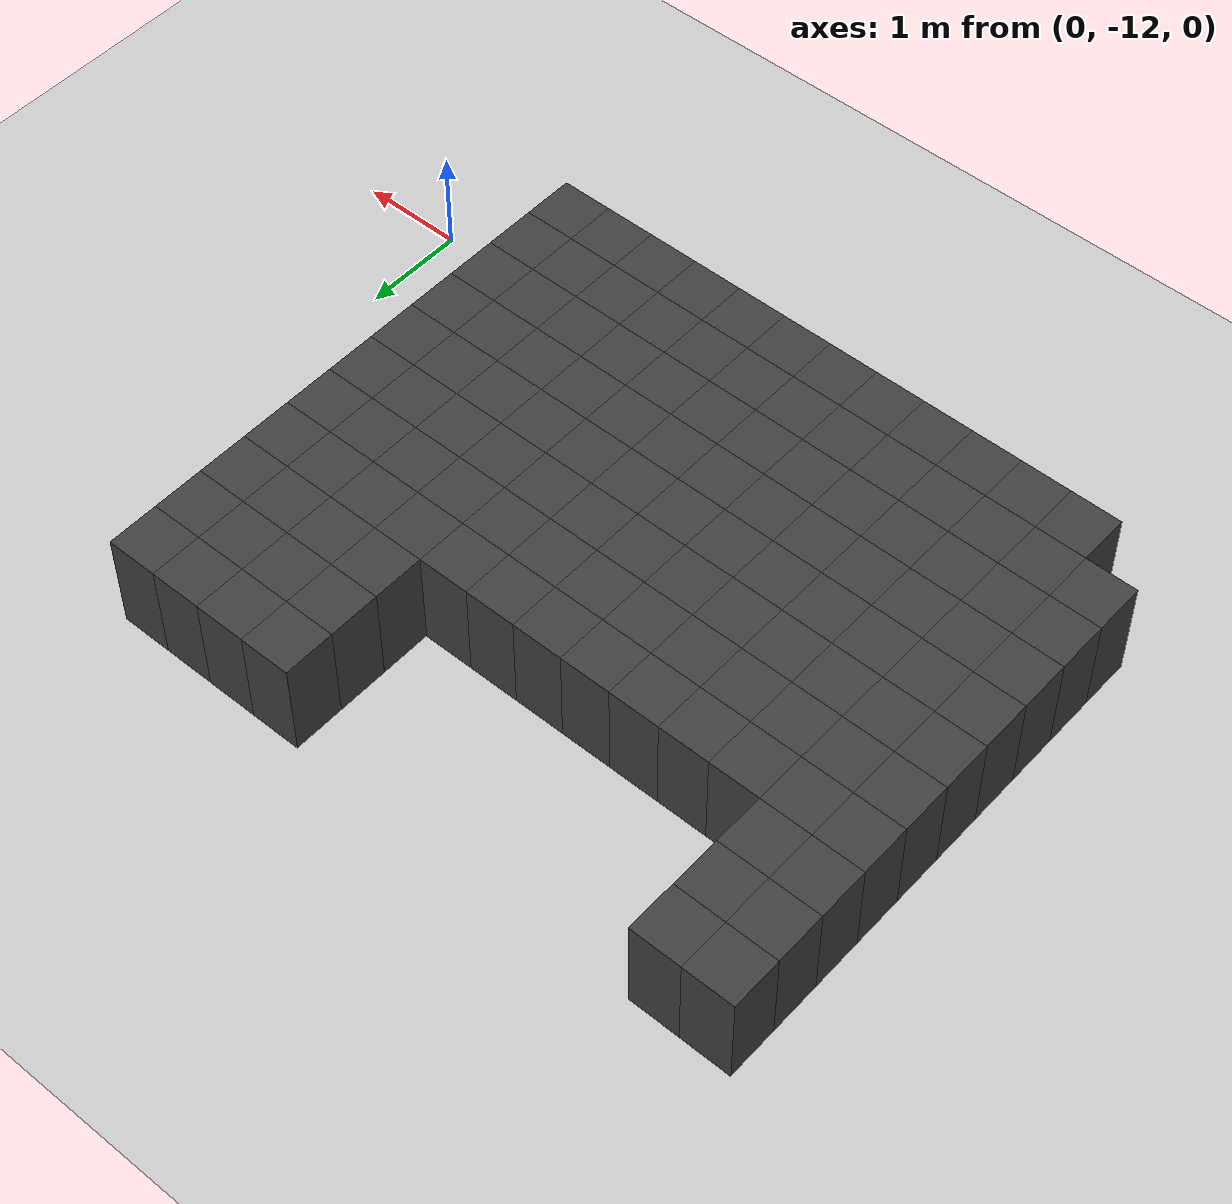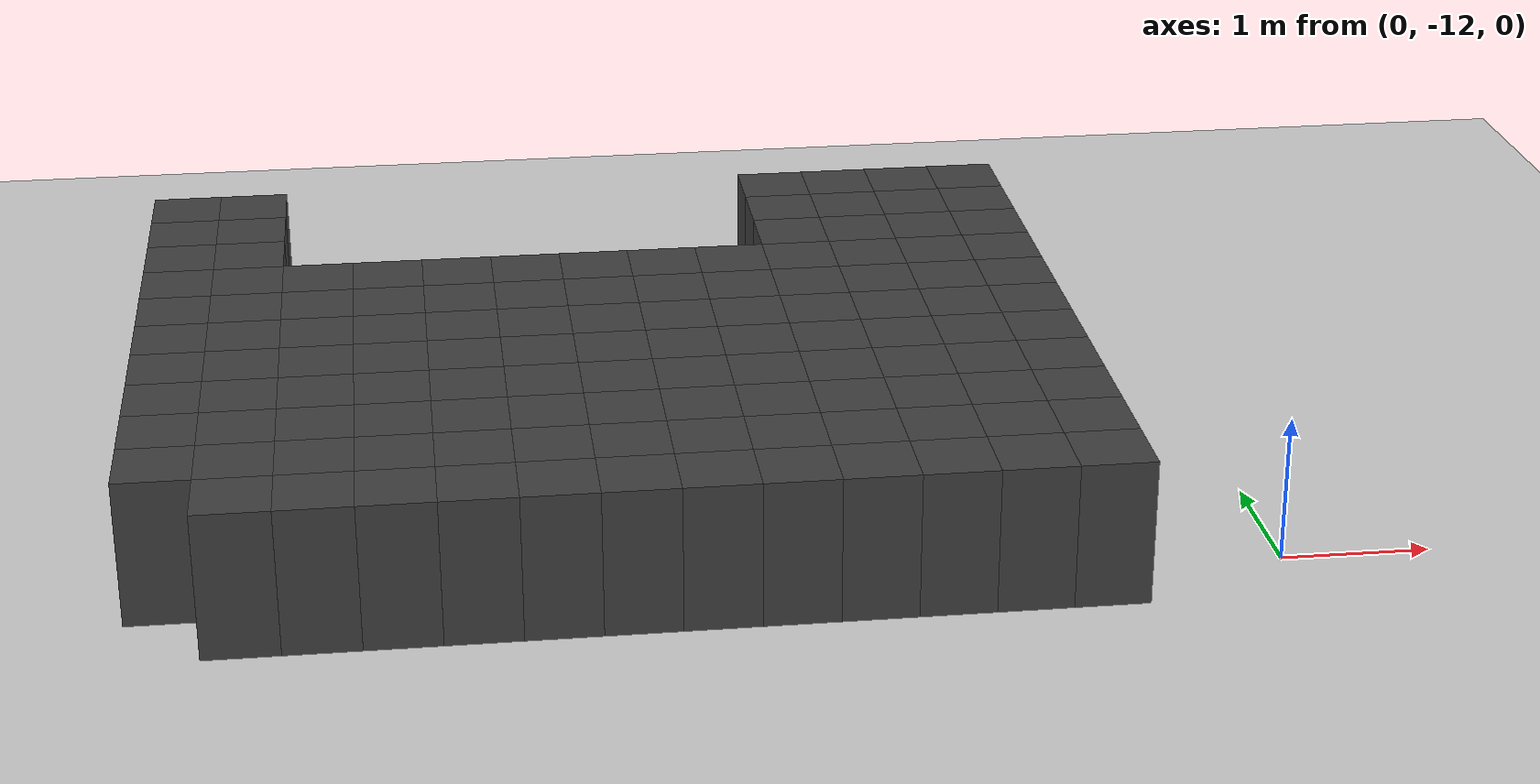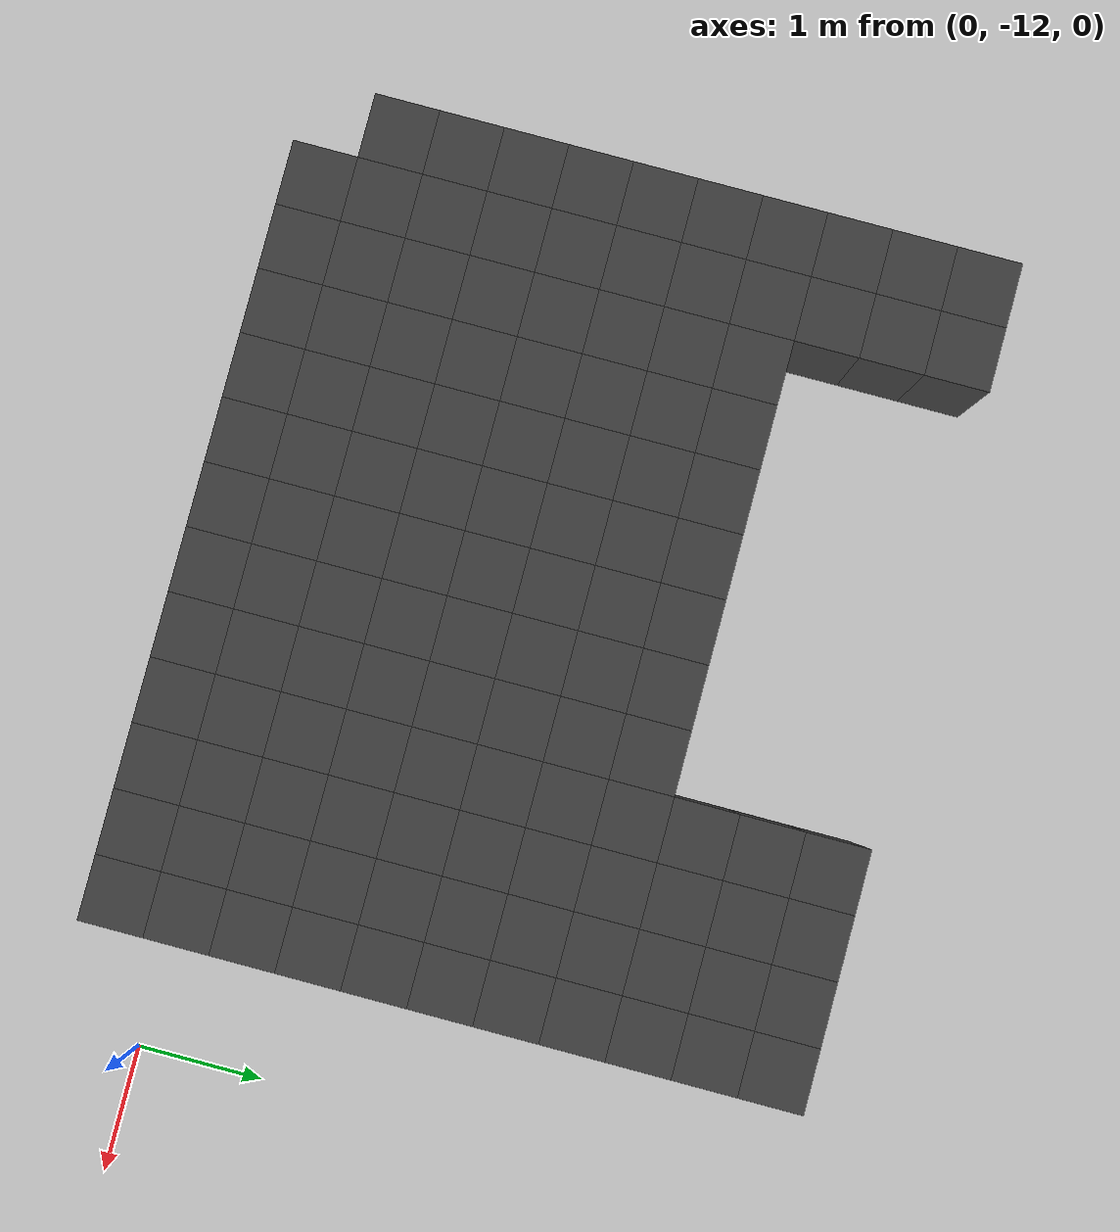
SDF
<sdf version="1.7">
 <world name="map_12885">
  <model name="ground_plane">
   <static>true</static>
   <link name="link">
    <collision name="collision">
     <geometry><plane><normal>0 0 1</normal><size>200 200</size></plane></geometry>
    </collision>
    <visual name="visual">
     <geometry><plane><normal>0 0 1</normal><size>200 200</size></plane></geometry>
     <material><ambient>0.8 0.8 0.8 1</ambient><diffuse>0.8 0.8 0.8 1</diffuse></material>
    </visual>
   </link>
  </model>
  <model name="maze_environment">
   <static>true</static>
   <link name="wall_1555">
    <pose>-7.250 -7.250 0.500 0 0 0</pose>
    <collision name="col"><geometry><box><size>0.5 0.5 1.0</size></box></geometry></collision>
    <visual name="vis">
     <geometry><box><size>0.5 0.5 1.0</size></box></geometry>
     <material><ambient>0.15 0.15 0.15 1</ambient><diffuse>0.25 0.25 0.25 1</diffuse></material>
    </visual>
   </link>
   <link name="wall_1556">
    <pose>-6.750 -7.250 0.500 0 0 0</pose>
    <collision name="col"><geometry><box><size>0.5 0.5 1.0</size></box></geometry></collision>
    <visual name="vis">
     <geometry><box><size>0.5 0.5 1.0</size></box></geometry>
     <material><ambient>0.15 0.15 0.15 1</ambient><diffuse>0.25 0.25 0.25 1</diffuse></material>
    </visual>
   </link>
   <link name="wall_1557">
    <pose>-2.750 -7.250 0.500 0 0 0</pose>
    <collision name="col"><geometry><box><size>0.5 0.5 1.0</size></box></geometry></collision>
    <visual name="vis">
     <geometry><box><size>0.5 0.5 1.0</size></box></geometry>
     <material><ambient>0.15 0.15 0.15 1</ambient><diffuse>0.25 0.25 0.25 1</diffuse></material>
    </visual>
   </link>
   <link name="wall_1558">
    <pose>-2.250 -7.250 0.500 0 0 0</pose>
    <collision name="col"><geometry><box><size>0.5 0.5 1.0</size></box></geometry></collision>
    <visual name="vis">
     <geometry><box><size>0.5 0.5 1.0</size></box></geometry>
     <material><ambient>0.15 0.15 0.15 1</ambient><diffuse>0.25 0.25 0.25 1</diffuse></material>
    </visual>
   </link>
   <link name="wall_1559">
    <pose>-1.750 -7.250 0.500 0 0 0</pose>
    <collision name="col"><geometry><box><size>0.5 0.5 1.0</size></box></geometry></collision>
    <visual name="vis">
     <geometry><box><size>0.5 0.5 1.0</size></box></geometry>
     <material><ambient>0.15 0.15 0.15 1</ambient><diffuse>0.25 0.25 0.25 1</diffuse></material>
    </visual>
   </link>
   <link name="wall_1560">
    <pose>-1.250 -7.250 0.500 0 0 0</pose>
    <collision name="col"><geometry><box><size>0.5 0.5 1.0</size></box></geometry></collision>
    <visual name="vis">
     <geometry><box><size>0.5 0.5 1.0</size></box></geometry>
     <material><ambient>0.15 0.15 0.15 1</ambient><diffuse>0.25 0.25 0.25 1</diffuse></material>
    </visual>
   </link>
   <link name="wall_1589">
    <pose>-7.250 -7.750 0.500 0 0 0</pose>
    <collision name="col"><geometry><box><size>0.5 0.5 1.0</size></box></geometry></collision>
    <visual name="vis">
     <geometry><box><size>0.5 0.5 1.0</size></box></geometry>
     <material><ambient>0.15 0.15 0.15 1</ambient><diffuse>0.25 0.25 0.25 1</diffuse></material>
    </visual>
   </link>
   <link name="wall_1590">
    <pose>-6.750 -7.750 0.500 0 0 0</pose>
    <collision name="col"><geometry><box><size>0.5 0.5 1.0</size></box></geometry></collision>
    <visual name="vis">
     <geometry><box><size>0.5 0.5 1.0</size></box></geometry>
     <material><ambient>0.15 0.15 0.15 1</ambient><diffuse>0.25 0.25 0.25 1</diffuse></material>
    </visual>
   </link>
   <link name="wall_1591">
    <pose>-2.750 -7.750 0.500 0 0 0</pose>
    <collision name="col"><geometry><box><size>0.5 0.5 1.0</size></box></geometry></collision>
    <visual name="vis">
     <geometry><box><size>0.5 0.5 1.0</size></box></geometry>
     <material><ambient>0.15 0.15 0.15 1</ambient><diffuse>0.25 0.25 0.25 1</diffuse></material>
    </visual>
   </link>
   <link name="wall_1592">
    <pose>-2.250 -7.750 0.500 0 0 0</pose>
    <collision name="col"><geometry><box><size>0.5 0.5 1.0</size></box></geometry></collision>
    <visual name="vis">
     <geometry><box><size>0.5 0.5 1.0</size></box></geometry>
     <material><ambient>0.15 0.15 0.15 1</ambient><diffuse>0.25 0.25 0.25 1</diffuse></material>
    </visual>
   </link>
   <link name="wall_1593">
    <pose>-1.750 -7.750 0.500 0 0 0</pose>
    <collision name="col"><geometry><box><size>0.5 0.5 1.0</size></box></geometry></collision>
    <visual name="vis">
     <geometry><box><size>0.5 0.5 1.0</size></box></geometry>
     <material><ambient>0.15 0.15 0.15 1</ambient><diffuse>0.25 0.25 0.25 1</diffuse></material>
    </visual>
   </link>
   <link name="wall_1594">
    <pose>-1.250 -7.750 0.500 0 0 0</pose>
    <collision name="col"><geometry><box><size>0.5 0.5 1.0</size></box></geometry></collision>
    <visual name="vis">
     <geometry><box><size>0.5 0.5 1.0</size></box></geometry>
     <material><ambient>0.15 0.15 0.15 1</ambient><diffuse>0.25 0.25 0.25 1</diffuse></material>
    </visual>
   </link>
   <link name="wall_1619">
    <pose>-7.250 -8.250 0.500 0 0 0</pose>
    <collision name="col"><geometry><box><size>0.5 0.5 1.0</size></box></geometry></collision>
    <visual name="vis">
     <geometry><box><size>0.5 0.5 1.0</size></box></geometry>
     <material><ambient>0.15 0.15 0.15 1</ambient><diffuse>0.25 0.25 0.25 1</diffuse></material>
    </visual>
   </link>
   <link name="wall_1620">
    <pose>-6.750 -8.250 0.500 0 0 0</pose>
    <collision name="col"><geometry><box><size>0.5 0.5 1.0</size></box></geometry></collision>
    <visual name="vis">
     <geometry><box><size>0.5 0.5 1.0</size></box></geometry>
     <material><ambient>0.15 0.15 0.15 1</ambient><diffuse>0.25 0.25 0.25 1</diffuse></material>
    </visual>
   </link>
   <link name="wall_1621">
    <pose>-2.750 -8.250 0.500 0 0 0</pose>
    <collision name="col"><geometry><box><size>0.5 0.5 1.0</size></box></geometry></collision>
    <visual name="vis">
     <geometry><box><size>0.5 0.5 1.0</size></box></geometry>
     <material><ambient>0.15 0.15 0.15 1</ambient><diffuse>0.25 0.25 0.25 1</diffuse></material>
    </visual>
   </link>
   <link name="wall_1622">
    <pose>-2.250 -8.250 0.500 0 0 0</pose>
    <collision name="col"><geometry><box><size>0.5 0.5 1.0</size></box></geometry></collision>
    <visual name="vis">
     <geometry><box><size>0.5 0.5 1.0</size></box></geometry>
     <material><ambient>0.15 0.15 0.15 1</ambient><diffuse>0.25 0.25 0.25 1</diffuse></material>
    </visual>
   </link>
   <link name="wall_1623">
    <pose>-1.750 -8.250 0.500 0 0 0</pose>
    <collision name="col"><geometry><box><size>0.5 0.5 1.0</size></box></geometry></collision>
    <visual name="vis">
     <geometry><box><size>0.5 0.5 1.0</size></box></geometry>
     <material><ambient>0.15 0.15 0.15 1</ambient><diffuse>0.25 0.25 0.25 1</diffuse></material>
    </visual>
   </link>
   <link name="wall_1624">
    <pose>-1.250 -8.250 0.500 0 0 0</pose>
    <collision name="col"><geometry><box><size>0.5 0.5 1.0</size></box></geometry></collision>
    <visual name="vis">
     <geometry><box><size>0.5 0.5 1.0</size></box></geometry>
     <material><ambient>0.15 0.15 0.15 1</ambient><diffuse>0.25 0.25 0.25 1</diffuse></material>
    </visual>
   </link>
   <link name="wall_1640">
    <pose>-7.250 -8.750 0.500 0 0 0</pose>
    <collision name="col"><geometry><box><size>0.5 0.5 1.0</size></box></geometry></collision>
    <visual name="vis">
     <geometry><box><size>0.5 0.5 1.0</size></box></geometry>
     <material><ambient>0.15 0.15 0.15 1</ambient><diffuse>0.25 0.25 0.25 1</diffuse></material>
    </visual>
   </link>
   <link name="wall_1641">
    <pose>-6.750 -8.750 0.500 0 0 0</pose>
    <collision name="col"><geometry><box><size>0.5 0.5 1.0</size></box></geometry></collision>
    <visual name="vis">
     <geometry><box><size>0.5 0.5 1.0</size></box></geometry>
     <material><ambient>0.15 0.15 0.15 1</ambient><diffuse>0.25 0.25 0.25 1</diffuse></material>
    </visual>
   </link>
   <link name="wall_1642">
    <pose>-6.250 -8.750 0.500 0 0 0</pose>
    <collision name="col"><geometry><box><size>0.5 0.5 1.0</size></box></geometry></collision>
    <visual name="vis">
     <geometry><box><size>0.5 0.5 1.0</size></box></geometry>
     <material><ambient>0.15 0.15 0.15 1</ambient><diffuse>0.25 0.25 0.25 1</diffuse></material>
    </visual>
   </link>
   <link name="wall_1643">
    <pose>-5.750 -8.750 0.500 0 0 0</pose>
    <collision name="col"><geometry><box><size>0.5 0.5 1.0</size></box></geometry></collision>
    <visual name="vis">
     <geometry><box><size>0.5 0.5 1.0</size></box></geometry>
     <material><ambient>0.15 0.15 0.15 1</ambient><diffuse>0.25 0.25 0.25 1</diffuse></material>
    </visual>
   </link>
   <link name="wall_1644">
    <pose>-5.250 -8.750 0.500 0 0 0</pose>
    <collision name="col"><geometry><box><size>0.5 0.5 1.0</size></box></geometry></collision>
    <visual name="vis">
     <geometry><box><size>0.5 0.5 1.0</size></box></geometry>
     <material><ambient>0.15 0.15 0.15 1</ambient><diffuse>0.25 0.25 0.25 1</diffuse></material>
    </visual>
   </link>
   <link name="wall_1645">
    <pose>-4.750 -8.750 0.500 0 0 0</pose>
    <collision name="col"><geometry><box><size>0.5 0.5 1.0</size></box></geometry></collision>
    <visual name="vis">
     <geometry><box><size>0.5 0.5 1.0</size></box></geometry>
     <material><ambient>0.15 0.15 0.15 1</ambient><diffuse>0.25 0.25 0.25 1</diffuse></material>
    </visual>
   </link>
   <link name="wall_1646">
    <pose>-4.250 -8.750 0.500 0 0 0</pose>
    <collision name="col"><geometry><box><size>0.5 0.5 1.0</size></box></geometry></collision>
    <visual name="vis">
     <geometry><box><size>0.5 0.5 1.0</size></box></geometry>
     <material><ambient>0.15 0.15 0.15 1</ambient><diffuse>0.25 0.25 0.25 1</diffuse></material>
    </visual>
   </link>
   <link name="wall_1647">
    <pose>-3.750 -8.750 0.500 0 0 0</pose>
    <collision name="col"><geometry><box><size>0.5 0.5 1.0</size></box></geometry></collision>
    <visual name="vis">
     <geometry><box><size>0.5 0.5 1.0</size></box></geometry>
     <material><ambient>0.15 0.15 0.15 1</ambient><diffuse>0.25 0.25 0.25 1</diffuse></material>
    </visual>
   </link>
   <link name="wall_1648">
    <pose>-3.250 -8.750 0.500 0 0 0</pose>
    <collision name="col"><geometry><box><size>0.5 0.5 1.0</size></box></geometry></collision>
    <visual name="vis">
     <geometry><box><size>0.5 0.5 1.0</size></box></geometry>
     <material><ambient>0.15 0.15 0.15 1</ambient><diffuse>0.25 0.25 0.25 1</diffuse></material>
    </visual>
   </link>
   <link name="wall_1649">
    <pose>-2.750 -8.750 0.500 0 0 0</pose>
    <collision name="col"><geometry><box><size>0.5 0.5 1.0</size></box></geometry></collision>
    <visual name="vis">
     <geometry><box><size>0.5 0.5 1.0</size></box></geometry>
     <material><ambient>0.15 0.15 0.15 1</ambient><diffuse>0.25 0.25 0.25 1</diffuse></material>
    </visual>
   </link>
   <link name="wall_1650">
    <pose>-2.250 -8.750 0.500 0 0 0</pose>
    <collision name="col"><geometry><box><size>0.5 0.5 1.0</size></box></geometry></collision>
    <visual name="vis">
     <geometry><box><size>0.5 0.5 1.0</size></box></geometry>
     <material><ambient>0.15 0.15 0.15 1</ambient><diffuse>0.25 0.25 0.25 1</diffuse></material>
    </visual>
   </link>
   <link name="wall_1651">
    <pose>-1.750 -8.750 0.500 0 0 0</pose>
    <collision name="col"><geometry><box><size>0.5 0.5 1.0</size></box></geometry></collision>
    <visual name="vis">
     <geometry><box><size>0.5 0.5 1.0</size></box></geometry>
     <material><ambient>0.15 0.15 0.15 1</ambient><diffuse>0.25 0.25 0.25 1</diffuse></material>
    </visual>
   </link>
   <link name="wall_1652">
    <pose>-1.250 -8.750 0.500 0 0 0</pose>
    <collision name="col"><geometry><box><size>0.5 0.5 1.0</size></box></geometry></collision>
    <visual name="vis">
     <geometry><box><size>0.5 0.5 1.0</size></box></geometry>
     <material><ambient>0.15 0.15 0.15 1</ambient><diffuse>0.25 0.25 0.25 1</diffuse></material>
    </visual>
   </link>
   <link name="wall_1668">
    <pose>-7.250 -9.250 0.500 0 0 0</pose>
    <collision name="col"><geometry><box><size>0.5 0.5 1.0</size></box></geometry></collision>
    <visual name="vis">
     <geometry><box><size>0.5 0.5 1.0</size></box></geometry>
     <material><ambient>0.15 0.15 0.15 1</ambient><diffuse>0.25 0.25 0.25 1</diffuse></material>
    </visual>
   </link>
   <link name="wall_1669">
    <pose>-6.750 -9.250 0.500 0 0 0</pose>
    <collision name="col"><geometry><box><size>0.5 0.5 1.0</size></box></geometry></collision>
    <visual name="vis">
     <geometry><box><size>0.5 0.5 1.0</size></box></geometry>
     <material><ambient>0.15 0.15 0.15 1</ambient><diffuse>0.25 0.25 0.25 1</diffuse></material>
    </visual>
   </link>
   <link name="wall_1670">
    <pose>-6.250 -9.250 0.500 0 0 0</pose>
    <collision name="col"><geometry><box><size>0.5 0.5 1.0</size></box></geometry></collision>
    <visual name="vis">
     <geometry><box><size>0.5 0.5 1.0</size></box></geometry>
     <material><ambient>0.15 0.15 0.15 1</ambient><diffuse>0.25 0.25 0.25 1</diffuse></material>
    </visual>
   </link>
   <link name="wall_1671">
    <pose>-5.750 -9.250 0.500 0 0 0</pose>
    <collision name="col"><geometry><box><size>0.5 0.5 1.0</size></box></geometry></collision>
    <visual name="vis">
     <geometry><box><size>0.5 0.5 1.0</size></box></geometry>
     <material><ambient>0.15 0.15 0.15 1</ambient><diffuse>0.25 0.25 0.25 1</diffuse></material>
    </visual>
   </link>
   <link name="wall_1672">
    <pose>-5.250 -9.250 0.500 0 0 0</pose>
    <collision name="col"><geometry><box><size>0.5 0.5 1.0</size></box></geometry></collision>
    <visual name="vis">
     <geometry><box><size>0.5 0.5 1.0</size></box></geometry>
     <material><ambient>0.15 0.15 0.15 1</ambient><diffuse>0.25 0.25 0.25 1</diffuse></material>
    </visual>
   </link>
   <link name="wall_1673">
    <pose>-4.750 -9.250 0.500 0 0 0</pose>
    <collision name="col"><geometry><box><size>0.5 0.5 1.0</size></box></geometry></collision>
    <visual name="vis">
     <geometry><box><size>0.5 0.5 1.0</size></box></geometry>
     <material><ambient>0.15 0.15 0.15 1</ambient><diffuse>0.25 0.25 0.25 1</diffuse></material>
    </visual>
   </link>
   <link name="wall_1674">
    <pose>-4.250 -9.250 0.500 0 0 0</pose>
    <collision name="col"><geometry><box><size>0.5 0.5 1.0</size></box></geometry></collision>
    <visual name="vis">
     <geometry><box><size>0.5 0.5 1.0</size></box></geometry>
     <material><ambient>0.15 0.15 0.15 1</ambient><diffuse>0.25 0.25 0.25 1</diffuse></material>
    </visual>
   </link>
   <link name="wall_1675">
    <pose>-3.750 -9.250 0.500 0 0 0</pose>
    <collision name="col"><geometry><box><size>0.5 0.5 1.0</size></box></geometry></collision>
    <visual name="vis">
     <geometry><box><size>0.5 0.5 1.0</size></box></geometry>
     <material><ambient>0.15 0.15 0.15 1</ambient><diffuse>0.25 0.25 0.25 1</diffuse></material>
    </visual>
   </link>
   <link name="wall_1676">
    <pose>-3.250 -9.250 0.500 0 0 0</pose>
    <collision name="col"><geometry><box><size>0.5 0.5 1.0</size></box></geometry></collision>
    <visual name="vis">
     <geometry><box><size>0.5 0.5 1.0</size></box></geometry>
     <material><ambient>0.15 0.15 0.15 1</ambient><diffuse>0.25 0.25 0.25 1</diffuse></material>
    </visual>
   </link>
   <link name="wall_1677">
    <pose>-2.750 -9.250 0.500 0 0 0</pose>
    <collision name="col"><geometry><box><size>0.5 0.5 1.0</size></box></geometry></collision>
    <visual name="vis">
     <geometry><box><size>0.5 0.5 1.0</size></box></geometry>
     <material><ambient>0.15 0.15 0.15 1</ambient><diffuse>0.25 0.25 0.25 1</diffuse></material>
    </visual>
   </link>
   <link name="wall_1678">
    <pose>-2.250 -9.250 0.500 0 0 0</pose>
    <collision name="col"><geometry><box><size>0.5 0.5 1.0</size></box></geometry></collision>
    <visual name="vis">
     <geometry><box><size>0.5 0.5 1.0</size></box></geometry>
     <material><ambient>0.15 0.15 0.15 1</ambient><diffuse>0.25 0.25 0.25 1</diffuse></material>
    </visual>
   </link>
   <link name="wall_1679">
    <pose>-1.750 -9.250 0.500 0 0 0</pose>
    <collision name="col"><geometry><box><size>0.5 0.5 1.0</size></box></geometry></collision>
    <visual name="vis">
     <geometry><box><size>0.5 0.5 1.0</size></box></geometry>
     <material><ambient>0.15 0.15 0.15 1</ambient><diffuse>0.25 0.25 0.25 1</diffuse></material>
    </visual>
   </link>
   <link name="wall_1680">
    <pose>-1.250 -9.250 0.500 0 0 0</pose>
    <collision name="col"><geometry><box><size>0.5 0.5 1.0</size></box></geometry></collision>
    <visual name="vis">
     <geometry><box><size>0.5 0.5 1.0</size></box></geometry>
     <material><ambient>0.15 0.15 0.15 1</ambient><diffuse>0.25 0.25 0.25 1</diffuse></material>
    </visual>
   </link>
   <link name="wall_1693">
    <pose>-7.250 -9.750 0.500 0 0 0</pose>
    <collision name="col"><geometry><box><size>0.5 0.5 1.0</size></box></geometry></collision>
    <visual name="vis">
     <geometry><box><size>0.5 0.5 1.0</size></box></geometry>
     <material><ambient>0.15 0.15 0.15 1</ambient><diffuse>0.25 0.25 0.25 1</diffuse></material>
    </visual>
   </link>
   <link name="wall_1694">
    <pose>-6.750 -9.750 0.500 0 0 0</pose>
    <collision name="col"><geometry><box><size>0.5 0.5 1.0</size></box></geometry></collision>
    <visual name="vis">
     <geometry><box><size>0.5 0.5 1.0</size></box></geometry>
     <material><ambient>0.15 0.15 0.15 1</ambient><diffuse>0.25 0.25 0.25 1</diffuse></material>
    </visual>
   </link>
   <link name="wall_1695">
    <pose>-6.250 -9.750 0.500 0 0 0</pose>
    <collision name="col"><geometry><box><size>0.5 0.5 1.0</size></box></geometry></collision>
    <visual name="vis">
     <geometry><box><size>0.5 0.5 1.0</size></box></geometry>
     <material><ambient>0.15 0.15 0.15 1</ambient><diffuse>0.25 0.25 0.25 1</diffuse></material>
    </visual>
   </link>
   <link name="wall_1696">
    <pose>-5.750 -9.750 0.500 0 0 0</pose>
    <collision name="col"><geometry><box><size>0.5 0.5 1.0</size></box></geometry></collision>
    <visual name="vis">
     <geometry><box><size>0.5 0.5 1.0</size></box></geometry>
     <material><ambient>0.15 0.15 0.15 1</ambient><diffuse>0.25 0.25 0.25 1</diffuse></material>
    </visual>
   </link>
   <link name="wall_1697">
    <pose>-5.250 -9.750 0.500 0 0 0</pose>
    <collision name="col"><geometry><box><size>0.5 0.5 1.0</size></box></geometry></collision>
    <visual name="vis">
     <geometry><box><size>0.5 0.5 1.0</size></box></geometry>
     <material><ambient>0.15 0.15 0.15 1</ambient><diffuse>0.25 0.25 0.25 1</diffuse></material>
    </visual>
   </link>
   <link name="wall_1698">
    <pose>-4.750 -9.750 0.500 0 0 0</pose>
    <collision name="col"><geometry><box><size>0.5 0.5 1.0</size></box></geometry></collision>
    <visual name="vis">
     <geometry><box><size>0.5 0.5 1.0</size></box></geometry>
     <material><ambient>0.15 0.15 0.15 1</ambient><diffuse>0.25 0.25 0.25 1</diffuse></material>
    </visual>
   </link>
   <link name="wall_1699">
    <pose>-4.250 -9.750 0.500 0 0 0</pose>
    <collision name="col"><geometry><box><size>0.5 0.5 1.0</size></box></geometry></collision>
    <visual name="vis">
     <geometry><box><size>0.5 0.5 1.0</size></box></geometry>
     <material><ambient>0.15 0.15 0.15 1</ambient><diffuse>0.25 0.25 0.25 1</diffuse></material>
    </visual>
   </link>
   <link name="wall_1700">
    <pose>-3.750 -9.750 0.500 0 0 0</pose>
    <collision name="col"><geometry><box><size>0.5 0.5 1.0</size></box></geometry></collision>
    <visual name="vis">
     <geometry><box><size>0.5 0.5 1.0</size></box></geometry>
     <material><ambient>0.15 0.15 0.15 1</ambient><diffuse>0.25 0.25 0.25 1</diffuse></material>
    </visual>
   </link>
   <link name="wall_1701">
    <pose>-3.250 -9.750 0.500 0 0 0</pose>
    <collision name="col"><geometry><box><size>0.5 0.5 1.0</size></box></geometry></collision>
    <visual name="vis">
     <geometry><box><size>0.5 0.5 1.0</size></box></geometry>
     <material><ambient>0.15 0.15 0.15 1</ambient><diffuse>0.25 0.25 0.25 1</diffuse></material>
    </visual>
   </link>
   <link name="wall_1702">
    <pose>-2.750 -9.750 0.500 0 0 0</pose>
    <collision name="col"><geometry><box><size>0.5 0.5 1.0</size></box></geometry></collision>
    <visual name="vis">
     <geometry><box><size>0.5 0.5 1.0</size></box></geometry>
     <material><ambient>0.15 0.15 0.15 1</ambient><diffuse>0.25 0.25 0.25 1</diffuse></material>
    </visual>
   </link>
   <link name="wall_1703">
    <pose>-2.250 -9.750 0.500 0 0 0</pose>
    <collision name="col"><geometry><box><size>0.5 0.5 1.0</size></box></geometry></collision>
    <visual name="vis">
     <geometry><box><size>0.5 0.5 1.0</size></box></geometry>
     <material><ambient>0.15 0.15 0.15 1</ambient><diffuse>0.25 0.25 0.25 1</diffuse></material>
    </visual>
   </link>
   <link name="wall_1704">
    <pose>-1.750 -9.750 0.500 0 0 0</pose>
    <collision name="col"><geometry><box><size>0.5 0.5 1.0</size></box></geometry></collision>
    <visual name="vis">
     <geometry><box><size>0.5 0.5 1.0</size></box></geometry>
     <material><ambient>0.15 0.15 0.15 1</ambient><diffuse>0.25 0.25 0.25 1</diffuse></material>
    </visual>
   </link>
   <link name="wall_1705">
    <pose>-1.250 -9.750 0.500 0 0 0</pose>
    <collision name="col"><geometry><box><size>0.5 0.5 1.0</size></box></geometry></collision>
    <visual name="vis">
     <geometry><box><size>0.5 0.5 1.0</size></box></geometry>
     <material><ambient>0.15 0.15 0.15 1</ambient><diffuse>0.25 0.25 0.25 1</diffuse></material>
    </visual>
   </link>
   <link name="wall_1721">
    <pose>-7.250 -10.250 0.500 0 0 0</pose>
    <collision name="col"><geometry><box><size>0.5 0.5 1.0</size></box></geometry></collision>
    <visual name="vis">
     <geometry><box><size>0.5 0.5 1.0</size></box></geometry>
     <material><ambient>0.15 0.15 0.15 1</ambient><diffuse>0.25 0.25 0.25 1</diffuse></material>
    </visual>
   </link>
   <link name="wall_1722">
    <pose>-6.750 -10.250 0.500 0 0 0</pose>
    <collision name="col"><geometry><box><size>0.5 0.5 1.0</size></box></geometry></collision>
    <visual name="vis">
     <geometry><box><size>0.5 0.5 1.0</size></box></geometry>
     <material><ambient>0.15 0.15 0.15 1</ambient><diffuse>0.25 0.25 0.25 1</diffuse></material>
    </visual>
   </link>
   <link name="wall_1723">
    <pose>-6.250 -10.250 0.500 0 0 0</pose>
    <collision name="col"><geometry><box><size>0.5 0.5 1.0</size></box></geometry></collision>
    <visual name="vis">
     <geometry><box><size>0.5 0.5 1.0</size></box></geometry>
     <material><ambient>0.15 0.15 0.15 1</ambient><diffuse>0.25 0.25 0.25 1</diffuse></material>
    </visual>
   </link>
   <link name="wall_1724">
    <pose>-5.750 -10.250 0.500 0 0 0</pose>
    <collision name="col"><geometry><box><size>0.5 0.5 1.0</size></box></geometry></collision>
    <visual name="vis">
     <geometry><box><size>0.5 0.5 1.0</size></box></geometry>
     <material><ambient>0.15 0.15 0.15 1</ambient><diffuse>0.25 0.25 0.25 1</diffuse></material>
    </visual>
   </link>
   <link name="wall_1725">
    <pose>-5.250 -10.250 0.500 0 0 0</pose>
    <collision name="col"><geometry><box><size>0.5 0.5 1.0</size></box></geometry></collision>
    <visual name="vis">
     <geometry><box><size>0.5 0.5 1.0</size></box></geometry>
     <material><ambient>0.15 0.15 0.15 1</ambient><diffuse>0.25 0.25 0.25 1</diffuse></material>
    </visual>
   </link>
   <link name="wall_1726">
    <pose>-4.750 -10.250 0.500 0 0 0</pose>
    <collision name="col"><geometry><box><size>0.5 0.5 1.0</size></box></geometry></collision>
    <visual name="vis">
     <geometry><box><size>0.5 0.5 1.0</size></box></geometry>
     <material><ambient>0.15 0.15 0.15 1</ambient><diffuse>0.25 0.25 0.25 1</diffuse></material>
    </visual>
   </link>
   <link name="wall_1727">
    <pose>-4.250 -10.250 0.500 0 0 0</pose>
    <collision name="col"><geometry><box><size>0.5 0.5 1.0</size></box></geometry></collision>
    <visual name="vis">
     <geometry><box><size>0.5 0.5 1.0</size></box></geometry>
     <material><ambient>0.15 0.15 0.15 1</ambient><diffuse>0.25 0.25 0.25 1</diffuse></material>
    </visual>
   </link>
   <link name="wall_1728">
    <pose>-3.750 -10.250 0.500 0 0 0</pose>
    <collision name="col"><geometry><box><size>0.5 0.5 1.0</size></box></geometry></collision>
    <visual name="vis">
     <geometry><box><size>0.5 0.5 1.0</size></box></geometry>
     <material><ambient>0.15 0.15 0.15 1</ambient><diffuse>0.25 0.25 0.25 1</diffuse></material>
    </visual>
   </link>
   <link name="wall_1729">
    <pose>-3.250 -10.250 0.500 0 0 0</pose>
    <collision name="col"><geometry><box><size>0.5 0.5 1.0</size></box></geometry></collision>
    <visual name="vis">
     <geometry><box><size>0.5 0.5 1.0</size></box></geometry>
     <material><ambient>0.15 0.15 0.15 1</ambient><diffuse>0.25 0.25 0.25 1</diffuse></material>
    </visual>
   </link>
   <link name="wall_1730">
    <pose>-2.750 -10.250 0.500 0 0 0</pose>
    <collision name="col"><geometry><box><size>0.5 0.5 1.0</size></box></geometry></collision>
    <visual name="vis">
     <geometry><box><size>0.5 0.5 1.0</size></box></geometry>
     <material><ambient>0.15 0.15 0.15 1</ambient><diffuse>0.25 0.25 0.25 1</diffuse></material>
    </visual>
   </link>
   <link name="wall_1731">
    <pose>-2.250 -10.250 0.500 0 0 0</pose>
    <collision name="col"><geometry><box><size>0.5 0.5 1.0</size></box></geometry></collision>
    <visual name="vis">
     <geometry><box><size>0.5 0.5 1.0</size></box></geometry>
     <material><ambient>0.15 0.15 0.15 1</ambient><diffuse>0.25 0.25 0.25 1</diffuse></material>
    </visual>
   </link>
   <link name="wall_1732">
    <pose>-1.750 -10.250 0.500 0 0 0</pose>
    <collision name="col"><geometry><box><size>0.5 0.5 1.0</size></box></geometry></collision>
    <visual name="vis">
     <geometry><box><size>0.5 0.5 1.0</size></box></geometry>
     <material><ambient>0.15 0.15 0.15 1</ambient><diffuse>0.25 0.25 0.25 1</diffuse></material>
    </visual>
   </link>
   <link name="wall_1733">
    <pose>-1.250 -10.250 0.500 0 0 0</pose>
    <collision name="col"><geometry><box><size>0.5 0.5 1.0</size></box></geometry></collision>
    <visual name="vis">
     <geometry><box><size>0.5 0.5 1.0</size></box></geometry>
     <material><ambient>0.15 0.15 0.15 1</ambient><diffuse>0.25 0.25 0.25 1</diffuse></material>
    </visual>
   </link>
   <link name="wall_1758">
    <pose>-7.250 -10.750 0.500 0 0 0</pose>
    <collision name="col"><geometry><box><size>0.5 0.5 1.0</size></box></geometry></collision>
    <visual name="vis">
     <geometry><box><size>0.5 0.5 1.0</size></box></geometry>
     <material><ambient>0.15 0.15 0.15 1</ambient><diffuse>0.25 0.25 0.25 1</diffuse></material>
    </visual>
   </link>
   <link name="wall_1759">
    <pose>-6.750 -10.750 0.500 0 0 0</pose>
    <collision name="col"><geometry><box><size>0.5 0.5 1.0</size></box></geometry></collision>
    <visual name="vis">
     <geometry><box><size>0.5 0.5 1.0</size></box></geometry>
     <material><ambient>0.15 0.15 0.15 1</ambient><diffuse>0.25 0.25 0.25 1</diffuse></material>
    </visual>
   </link>
   <link name="wall_1760">
    <pose>-6.250 -10.750 0.500 0 0 0</pose>
    <collision name="col"><geometry><box><size>0.5 0.5 1.0</size></box></geometry></collision>
    <visual name="vis">
     <geometry><box><size>0.5 0.5 1.0</size></box></geometry>
     <material><ambient>0.15 0.15 0.15 1</ambient><diffuse>0.25 0.25 0.25 1</diffuse></material>
    </visual>
   </link>
   <link name="wall_1761">
    <pose>-5.750 -10.750 0.500 0 0 0</pose>
    <collision name="col"><geometry><box><size>0.5 0.5 1.0</size></box></geometry></collision>
    <visual name="vis">
     <geometry><box><size>0.5 0.5 1.0</size></box></geometry>
     <material><ambient>0.15 0.15 0.15 1</ambient><diffuse>0.25 0.25 0.25 1</diffuse></material>
    </visual>
   </link>
   <link name="wall_1762">
    <pose>-5.250 -10.750 0.500 0 0 0</pose>
    <collision name="col"><geometry><box><size>0.5 0.5 1.0</size></box></geometry></collision>
    <visual name="vis">
     <geometry><box><size>0.5 0.5 1.0</size></box></geometry>
     <material><ambient>0.15 0.15 0.15 1</ambient><diffuse>0.25 0.25 0.25 1</diffuse></material>
    </visual>
   </link>
   <link name="wall_1763">
    <pose>-4.750 -10.750 0.500 0 0 0</pose>
    <collision name="col"><geometry><box><size>0.5 0.5 1.0</size></box></geometry></collision>
    <visual name="vis">
     <geometry><box><size>0.5 0.5 1.0</size></box></geometry>
     <material><ambient>0.15 0.15 0.15 1</ambient><diffuse>0.25 0.25 0.25 1</diffuse></material>
    </visual>
   </link>
   <link name="wall_1764">
    <pose>-4.250 -10.750 0.500 0 0 0</pose>
    <collision name="col"><geometry><box><size>0.5 0.5 1.0</size></box></geometry></collision>
    <visual name="vis">
     <geometry><box><size>0.5 0.5 1.0</size></box></geometry>
     <material><ambient>0.15 0.15 0.15 1</ambient><diffuse>0.25 0.25 0.25 1</diffuse></material>
    </visual>
   </link>
   <link name="wall_1765">
    <pose>-3.750 -10.750 0.500 0 0 0</pose>
    <collision name="col"><geometry><box><size>0.5 0.5 1.0</size></box></geometry></collision>
    <visual name="vis">
     <geometry><box><size>0.5 0.5 1.0</size></box></geometry>
     <material><ambient>0.15 0.15 0.15 1</ambient><diffuse>0.25 0.25 0.25 1</diffuse></material>
    </visual>
   </link>
   <link name="wall_1766">
    <pose>-3.250 -10.750 0.500 0 0 0</pose>
    <collision name="col"><geometry><box><size>0.5 0.5 1.0</size></box></geometry></collision>
    <visual name="vis">
     <geometry><box><size>0.5 0.5 1.0</size></box></geometry>
     <material><ambient>0.15 0.15 0.15 1</ambient><diffuse>0.25 0.25 0.25 1</diffuse></material>
    </visual>
   </link>
   <link name="wall_1767">
    <pose>-2.750 -10.750 0.500 0 0 0</pose>
    <collision name="col"><geometry><box><size>0.5 0.5 1.0</size></box></geometry></collision>
    <visual name="vis">
     <geometry><box><size>0.5 0.5 1.0</size></box></geometry>
     <material><ambient>0.15 0.15 0.15 1</ambient><diffuse>0.25 0.25 0.25 1</diffuse></material>
    </visual>
   </link>
   <link name="wall_1768">
    <pose>-2.250 -10.750 0.500 0 0 0</pose>
    <collision name="col"><geometry><box><size>0.5 0.5 1.0</size></box></geometry></collision>
    <visual name="vis">
     <geometry><box><size>0.5 0.5 1.0</size></box></geometry>
     <material><ambient>0.15 0.15 0.15 1</ambient><diffuse>0.25 0.25 0.25 1</diffuse></material>
    </visual>
   </link>
   <link name="wall_1769">
    <pose>-1.750 -10.750 0.500 0 0 0</pose>
    <collision name="col"><geometry><box><size>0.5 0.5 1.0</size></box></geometry></collision>
    <visual name="vis">
     <geometry><box><size>0.5 0.5 1.0</size></box></geometry>
     <material><ambient>0.15 0.15 0.15 1</ambient><diffuse>0.25 0.25 0.25 1</diffuse></material>
    </visual>
   </link>
   <link name="wall_1770">
    <pose>-1.250 -10.750 0.500 0 0 0</pose>
    <collision name="col"><geometry><box><size>0.5 0.5 1.0</size></box></geometry></collision>
    <visual name="vis">
     <geometry><box><size>0.5 0.5 1.0</size></box></geometry>
     <material><ambient>0.15 0.15 0.15 1</ambient><diffuse>0.25 0.25 0.25 1</diffuse></material>
    </visual>
   </link>
   <link name="wall_1799">
    <pose>-7.250 -11.250 0.500 0 0 0</pose>
    <collision name="col"><geometry><box><size>0.5 0.5 1.0</size></box></geometry></collision>
    <visual name="vis">
     <geometry><box><size>0.5 0.5 1.0</size></box></geometry>
     <material><ambient>0.15 0.15 0.15 1</ambient><diffuse>0.25 0.25 0.25 1</diffuse></material>
    </visual>
   </link>
   <link name="wall_1800">
    <pose>-6.750 -11.250 0.500 0 0 0</pose>
    <collision name="col"><geometry><box><size>0.5 0.5 1.0</size></box></geometry></collision>
    <visual name="vis">
     <geometry><box><size>0.5 0.5 1.0</size></box></geometry>
     <material><ambient>0.15 0.15 0.15 1</ambient><diffuse>0.25 0.25 0.25 1</diffuse></material>
    </visual>
   </link>
   <link name="wall_1801">
    <pose>-6.250 -11.250 0.500 0 0 0</pose>
    <collision name="col"><geometry><box><size>0.5 0.5 1.0</size></box></geometry></collision>
    <visual name="vis">
     <geometry><box><size>0.5 0.5 1.0</size></box></geometry>
     <material><ambient>0.15 0.15 0.15 1</ambient><diffuse>0.25 0.25 0.25 1</diffuse></material>
    </visual>
   </link>
   <link name="wall_1802">
    <pose>-5.750 -11.250 0.500 0 0 0</pose>
    <collision name="col"><geometry><box><size>0.5 0.5 1.0</size></box></geometry></collision>
    <visual name="vis">
     <geometry><box><size>0.5 0.5 1.0</size></box></geometry>
     <material><ambient>0.15 0.15 0.15 1</ambient><diffuse>0.25 0.25 0.25 1</diffuse></material>
    </visual>
   </link>
   <link name="wall_1803">
    <pose>-5.250 -11.250 0.500 0 0 0</pose>
    <collision name="col"><geometry><box><size>0.5 0.5 1.0</size></box></geometry></collision>
    <visual name="vis">
     <geometry><box><size>0.5 0.5 1.0</size></box></geometry>
     <material><ambient>0.15 0.15 0.15 1</ambient><diffuse>0.25 0.25 0.25 1</diffuse></material>
    </visual>
   </link>
   <link name="wall_1804">
    <pose>-4.750 -11.250 0.500 0 0 0</pose>
    <collision name="col"><geometry><box><size>0.5 0.5 1.0</size></box></geometry></collision>
    <visual name="vis">
     <geometry><box><size>0.5 0.5 1.0</size></box></geometry>
     <material><ambient>0.15 0.15 0.15 1</ambient><diffuse>0.25 0.25 0.25 1</diffuse></material>
    </visual>
   </link>
   <link name="wall_1805">
    <pose>-4.250 -11.250 0.500 0 0 0</pose>
    <collision name="col"><geometry><box><size>0.5 0.5 1.0</size></box></geometry></collision>
    <visual name="vis">
     <geometry><box><size>0.5 0.5 1.0</size></box></geometry>
     <material><ambient>0.15 0.15 0.15 1</ambient><diffuse>0.25 0.25 0.25 1</diffuse></material>
    </visual>
   </link>
   <link name="wall_1806">
    <pose>-3.750 -11.250 0.500 0 0 0</pose>
    <collision name="col"><geometry><box><size>0.5 0.5 1.0</size></box></geometry></collision>
    <visual name="vis">
     <geometry><box><size>0.5 0.5 1.0</size></box></geometry>
     <material><ambient>0.15 0.15 0.15 1</ambient><diffuse>0.25 0.25 0.25 1</diffuse></material>
    </visual>
   </link>
   <link name="wall_1807">
    <pose>-3.250 -11.250 0.500 0 0 0</pose>
    <collision name="col"><geometry><box><size>0.5 0.5 1.0</size></box></geometry></collision>
    <visual name="vis">
     <geometry><box><size>0.5 0.5 1.0</size></box></geometry>
     <material><ambient>0.15 0.15 0.15 1</ambient><diffuse>0.25 0.25 0.25 1</diffuse></material>
    </visual>
   </link>
   <link name="wall_1808">
    <pose>-2.750 -11.250 0.500 0 0 0</pose>
    <collision name="col"><geometry><box><size>0.5 0.5 1.0</size></box></geometry></collision>
    <visual name="vis">
     <geometry><box><size>0.5 0.5 1.0</size></box></geometry>
     <material><ambient>0.15 0.15 0.15 1</ambient><diffuse>0.25 0.25 0.25 1</diffuse></material>
    </visual>
   </link>
   <link name="wall_1809">
    <pose>-2.250 -11.250 0.500 0 0 0</pose>
    <collision name="col"><geometry><box><size>0.5 0.5 1.0</size></box></geometry></collision>
    <visual name="vis">
     <geometry><box><size>0.5 0.5 1.0</size></box></geometry>
     <material><ambient>0.15 0.15 0.15 1</ambient><diffuse>0.25 0.25 0.25 1</diffuse></material>
    </visual>
   </link>
   <link name="wall_1810">
    <pose>-1.750 -11.250 0.500 0 0 0</pose>
    <collision name="col"><geometry><box><size>0.5 0.5 1.0</size></box></geometry></collision>
    <visual name="vis">
     <geometry><box><size>0.5 0.5 1.0</size></box></geometry>
     <material><ambient>0.15 0.15 0.15 1</ambient><diffuse>0.25 0.25 0.25 1</diffuse></material>
    </visual>
   </link>
   <link name="wall_1811">
    <pose>-1.250 -11.250 0.500 0 0 0</pose>
    <collision name="col"><geometry><box><size>0.5 0.5 1.0</size></box></geometry></collision>
    <visual name="vis">
     <geometry><box><size>0.5 0.5 1.0</size></box></geometry>
     <material><ambient>0.15 0.15 0.15 1</ambient><diffuse>0.25 0.25 0.25 1</diffuse></material>
    </visual>
   </link>
   <link name="wall_1845">
    <pose>-7.250 -11.750 0.500 0 0 0</pose>
    <collision name="col"><geometry><box><size>0.5 0.5 1.0</size></box></geometry></collision>
    <visual name="vis">
     <geometry><box><size>0.5 0.5 1.0</size></box></geometry>
     <material><ambient>0.15 0.15 0.15 1</ambient><diffuse>0.25 0.25 0.25 1</diffuse></material>
    </visual>
   </link>
   <link name="wall_1846">
    <pose>-6.750 -11.750 0.500 0 0 0</pose>
    <collision name="col"><geometry><box><size>0.5 0.5 1.0</size></box></geometry></collision>
    <visual name="vis">
     <geometry><box><size>0.5 0.5 1.0</size></box></geometry>
     <material><ambient>0.15 0.15 0.15 1</ambient><diffuse>0.25 0.25 0.25 1</diffuse></material>
    </visual>
   </link>
   <link name="wall_1847">
    <pose>-6.250 -11.750 0.500 0 0 0</pose>
    <collision name="col"><geometry><box><size>0.5 0.5 1.0</size></box></geometry></collision>
    <visual name="vis">
     <geometry><box><size>0.5 0.5 1.0</size></box></geometry>
     <material><ambient>0.15 0.15 0.15 1</ambient><diffuse>0.25 0.25 0.25 1</diffuse></material>
    </visual>
   </link>
   <link name="wall_1848">
    <pose>-5.750 -11.750 0.500 0 0 0</pose>
    <collision name="col"><geometry><box><size>0.5 0.5 1.0</size></box></geometry></collision>
    <visual name="vis">
     <geometry><box><size>0.5 0.5 1.0</size></box></geometry>
     <material><ambient>0.15 0.15 0.15 1</ambient><diffuse>0.25 0.25 0.25 1</diffuse></material>
    </visual>
   </link>
   <link name="wall_1849">
    <pose>-5.250 -11.750 0.500 0 0 0</pose>
    <collision name="col"><geometry><box><size>0.5 0.5 1.0</size></box></geometry></collision>
    <visual name="vis">
     <geometry><box><size>0.5 0.5 1.0</size></box></geometry>
     <material><ambient>0.15 0.15 0.15 1</ambient><diffuse>0.25 0.25 0.25 1</diffuse></material>
    </visual>
   </link>
   <link name="wall_1850">
    <pose>-4.750 -11.750 0.500 0 0 0</pose>
    <collision name="col"><geometry><box><size>0.5 0.5 1.0</size></box></geometry></collision>
    <visual name="vis">
     <geometry><box><size>0.5 0.5 1.0</size></box></geometry>
     <material><ambient>0.15 0.15 0.15 1</ambient><diffuse>0.25 0.25 0.25 1</diffuse></material>
    </visual>
   </link>
   <link name="wall_1851">
    <pose>-4.250 -11.750 0.500 0 0 0</pose>
    <collision name="col"><geometry><box><size>0.5 0.5 1.0</size></box></geometry></collision>
    <visual name="vis">
     <geometry><box><size>0.5 0.5 1.0</size></box></geometry>
     <material><ambient>0.15 0.15 0.15 1</ambient><diffuse>0.25 0.25 0.25 1</diffuse></material>
    </visual>
   </link>
   <link name="wall_1852">
    <pose>-3.750 -11.750 0.500 0 0 0</pose>
    <collision name="col"><geometry><box><size>0.5 0.5 1.0</size></box></geometry></collision>
    <visual name="vis">
     <geometry><box><size>0.5 0.5 1.0</size></box></geometry>
     <material><ambient>0.15 0.15 0.15 1</ambient><diffuse>0.25 0.25 0.25 1</diffuse></material>
    </visual>
   </link>
   <link name="wall_1853">
    <pose>-3.250 -11.750 0.500 0 0 0</pose>
    <collision name="col"><geometry><box><size>0.5 0.5 1.0</size></box></geometry></collision>
    <visual name="vis">
     <geometry><box><size>0.5 0.5 1.0</size></box></geometry>
     <material><ambient>0.15 0.15 0.15 1</ambient><diffuse>0.25 0.25 0.25 1</diffuse></material>
    </visual>
   </link>
   <link name="wall_1854">
    <pose>-2.750 -11.750 0.500 0 0 0</pose>
    <collision name="col"><geometry><box><size>0.5 0.5 1.0</size></box></geometry></collision>
    <visual name="vis">
     <geometry><box><size>0.5 0.5 1.0</size></box></geometry>
     <material><ambient>0.15 0.15 0.15 1</ambient><diffuse>0.25 0.25 0.25 1</diffuse></material>
    </visual>
   </link>
   <link name="wall_1855">
    <pose>-2.250 -11.750 0.500 0 0 0</pose>
    <collision name="col"><geometry><box><size>0.5 0.5 1.0</size></box></geometry></collision>
    <visual name="vis">
     <geometry><box><size>0.5 0.5 1.0</size></box></geometry>
     <material><ambient>0.15 0.15 0.15 1</ambient><diffuse>0.25 0.25 0.25 1</diffuse></material>
    </visual>
   </link>
   <link name="wall_1856">
    <pose>-1.750 -11.750 0.500 0 0 0</pose>
    <collision name="col"><geometry><box><size>0.5 0.5 1.0</size></box></geometry></collision>
    <visual name="vis">
     <geometry><box><size>0.5 0.5 1.0</size></box></geometry>
     <material><ambient>0.15 0.15 0.15 1</ambient><diffuse>0.25 0.25 0.25 1</diffuse></material>
    </visual>
   </link>
   <link name="wall_1857">
    <pose>-1.250 -11.750 0.500 0 0 0</pose>
    <collision name="col"><geometry><box><size>0.5 0.5 1.0</size></box></geometry></collision>
    <visual name="vis">
     <geometry><box><size>0.5 0.5 1.0</size></box></geometry>
     <material><ambient>0.15 0.15 0.15 1</ambient><diffuse>0.25 0.25 0.25 1</diffuse></material>
    </visual>
   </link>
   <link name="wall_1893">
    <pose>-6.750 -12.250 0.500 0 0 0</pose>
    <collision name="col"><geometry><box><size>0.5 0.5 1.0</size></box></geometry></collision>
    <visual name="vis">
     <geometry><box><size>0.5 0.5 1.0</size></box></geometry>
     <material><ambient>0.15 0.15 0.15 1</ambient><diffuse>0.25 0.25 0.25 1</diffuse></material>
    </visual>
   </link>
   <link name="wall_1894">
    <pose>-6.250 -12.250 0.500 0 0 0</pose>
    <collision name="col"><geometry><box><size>0.5 0.5 1.0</size></box></geometry></collision>
    <visual name="vis">
     <geometry><box><size>0.5 0.5 1.0</size></box></geometry>
     <material><ambient>0.15 0.15 0.15 1</ambient><diffuse>0.25 0.25 0.25 1</diffuse></material>
    </visual>
   </link>
   <link name="wall_1895">
    <pose>-5.750 -12.250 0.500 0 0 0</pose>
    <collision name="col"><geometry><box><size>0.5 0.5 1.0</size></box></geometry></collision>
    <visual name="vis">
     <geometry><box><size>0.5 0.5 1.0</size></box></geometry>
     <material><ambient>0.15 0.15 0.15 1</ambient><diffuse>0.25 0.25 0.25 1</diffuse></material>
    </visual>
   </link>
   <link name="wall_1896">
    <pose>-5.250 -12.250 0.500 0 0 0</pose>
    <collision name="col"><geometry><box><size>0.5 0.5 1.0</size></box></geometry></collision>
    <visual name="vis">
     <geometry><box><size>0.5 0.5 1.0</size></box></geometry>
     <material><ambient>0.15 0.15 0.15 1</ambient><diffuse>0.25 0.25 0.25 1</diffuse></material>
    </visual>
   </link>
   <link name="wall_1897">
    <pose>-4.750 -12.250 0.500 0 0 0</pose>
    <collision name="col"><geometry><box><size>0.5 0.5 1.0</size></box></geometry></collision>
    <visual name="vis">
     <geometry><box><size>0.5 0.5 1.0</size></box></geometry>
     <material><ambient>0.15 0.15 0.15 1</ambient><diffuse>0.25 0.25 0.25 1</diffuse></material>
    </visual>
   </link>
   <link name="wall_1898">
    <pose>-4.250 -12.250 0.500 0 0 0</pose>
    <collision name="col"><geometry><box><size>0.5 0.5 1.0</size></box></geometry></collision>
    <visual name="vis">
     <geometry><box><size>0.5 0.5 1.0</size></box></geometry>
     <material><ambient>0.15 0.15 0.15 1</ambient><diffuse>0.25 0.25 0.25 1</diffuse></material>
    </visual>
   </link>
   <link name="wall_1899">
    <pose>-3.750 -12.250 0.500 0 0 0</pose>
    <collision name="col"><geometry><box><size>0.5 0.5 1.0</size></box></geometry></collision>
    <visual name="vis">
     <geometry><box><size>0.5 0.5 1.0</size></box></geometry>
     <material><ambient>0.15 0.15 0.15 1</ambient><diffuse>0.25 0.25 0.25 1</diffuse></material>
    </visual>
   </link>
   <link name="wall_1900">
    <pose>-3.250 -12.250 0.500 0 0 0</pose>
    <collision name="col"><geometry><box><size>0.5 0.5 1.0</size></box></geometry></collision>
    <visual name="vis">
     <geometry><box><size>0.5 0.5 1.0</size></box></geometry>
     <material><ambient>0.15 0.15 0.15 1</ambient><diffuse>0.25 0.25 0.25 1</diffuse></material>
    </visual>
   </link>
   <link name="wall_1901">
    <pose>-2.750 -12.250 0.500 0 0 0</pose>
    <collision name="col"><geometry><box><size>0.5 0.5 1.0</size></box></geometry></collision>
    <visual name="vis">
     <geometry><box><size>0.5 0.5 1.0</size></box></geometry>
     <material><ambient>0.15 0.15 0.15 1</ambient><diffuse>0.25 0.25 0.25 1</diffuse></material>
    </visual>
   </link>
   <link name="wall_1902">
    <pose>-2.250 -12.250 0.500 0 0 0</pose>
    <collision name="col"><geometry><box><size>0.5 0.5 1.0</size></box></geometry></collision>
    <visual name="vis">
     <geometry><box><size>0.5 0.5 1.0</size></box></geometry>
     <material><ambient>0.15 0.15 0.15 1</ambient><diffuse>0.25 0.25 0.25 1</diffuse></material>
    </visual>
   </link>
   <link name="wall_1903">
    <pose>-1.750 -12.250 0.500 0 0 0</pose>
    <collision name="col"><geometry><box><size>0.5 0.5 1.0</size></box></geometry></collision>
    <visual name="vis">
     <geometry><box><size>0.5 0.5 1.0</size></box></geometry>
     <material><ambient>0.15 0.15 0.15 1</ambient><diffuse>0.25 0.25 0.25 1</diffuse></material>
    </visual>
   </link>
   <link name="wall_1904">
    <pose>-1.250 -12.250 0.500 0 0 0</pose>
    <collision name="col"><geometry><box><size>0.5 0.5 1.0</size></box></geometry></collision>
    <visual name="vis">
     <geometry><box><size>0.5 0.5 1.0</size></box></geometry>
     <material><ambient>0.15 0.15 0.15 1</ambient><diffuse>0.25 0.25 0.25 1</diffuse></material>
    </visual>
   </link>
  </model>
 </world>
</sdf>
